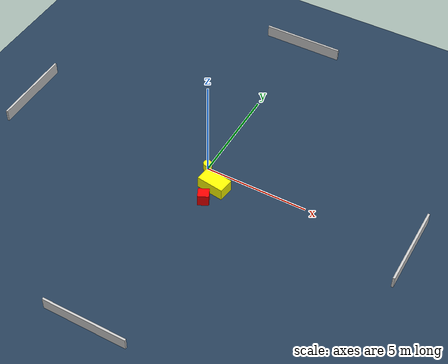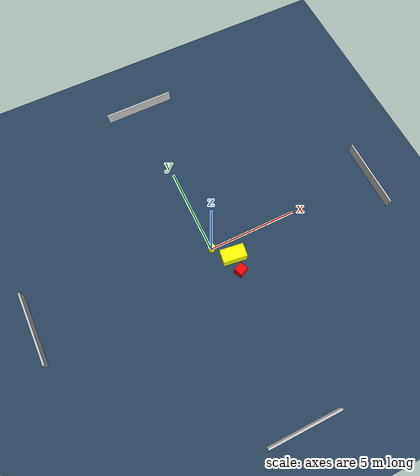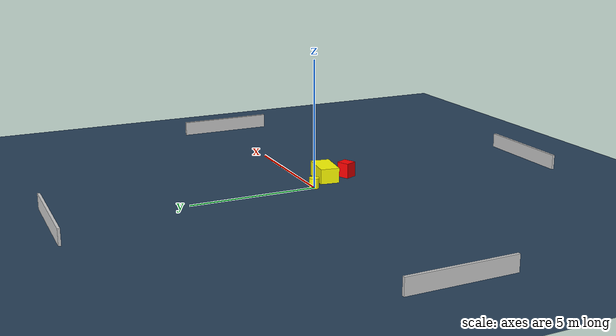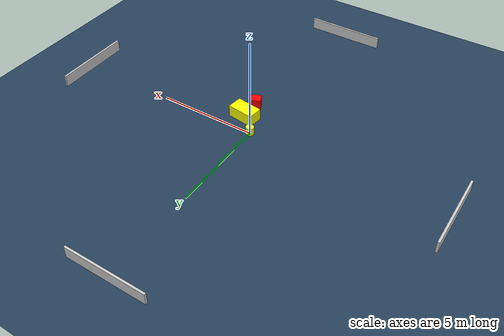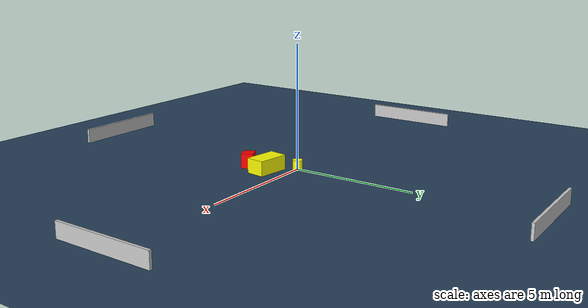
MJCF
<?xml version="1.0" ?>
<mujoco model="generated_environment">
  <option timestep="0.01" integrator="RK4" cone="elliptic"/>
  <default>
    <geom density="1"/>
  </default>
  <asset>
    <texture builtin="gradient" height="3072" name="skybox" rgb1="0.3 0.5 0.7" rgb2="0 0 0" type="skybox" width="512"/>
    <texture builtin="checker" height="300" name="groundplane" rgb1="0.2 0.3 0.4" rgb2="0.1 0.2 0.3" type="2d" width="300"/>
    <material name="groundplane" reflectance="0.2" texrepeat="5 5" texture="groundplane"/>
  </asset>
  <worldbody>
    <light dir="0 0 -1" directional="true" pos="0 0 1.5"/>
    <geom condim="3" friction="0.5 0.005 0.001" material="groundplane" name="floor" pos="0 0 0" size="0 0 0.05" type="plane"/>
    <body name="walls">
      <geom name="wall_1" condim="4" pos="-10.0 0.0 0.3" rgba="0.800000011920929 0.800000011920929 0.800000011920929 1.0" size="0.05 2.0 0.3" type="box"/>
      <geom name="wall_2" condim="4" pos="10.0 0.0 0.3" rgba="0.800000011920929 0.800000011920929 0.800000011920929 1.0" size="0.05 2.0 0.3" type="box"/>
      <geom name="wall_3" condim="4" pos="0.0 -10.0 0.3" rgba="0.800000011920929 0.800000011920929 0.800000011920929 1.0" size="2.0 0.05 0.3" type="box"/>
      <geom name="wall_4" condim="4" pos="0.0 10.0 0.3" rgba="0.800000011920929 0.800000011920929 0.800000011920929 1.0" size="2.0 0.05 0.3" type="box"/>
    </body>
    <body name="robot">
      <joint name="joint_x" type="slide" pos="0 0 0" axis="1 0 0"/>
      <joint name="joint_y" type="slide" pos="0 0 0" axis="0 1 0"/>
      <geom name="robot" type="cylinder" pos="0.0 0.0 0.2" size="0.2 0.2 0.0" mass="5.0" friction="1.0 0.005 0.0001" condim="4" rgba="1.0 1.0 0.0 1.0"/>
    </body>
    <body name="obstacle_1_movable">
      <geom name="obstacle_1_movable" condim="4" pos="0.8599003053423402 -0.8795277555729859 0.3" euler="0 0 262.34439090838555" friction="0.0 0.005 0.001" rgba="1.0 1.0 0.0 1.0" size="0.38094562514139757 0.6637550657963686 0.3" type="box" mass="0.1"/>
      <joint type="free"/>
    </body>
    <body name="obstacle_2_static">
      <geom name="obstacle_2_static" condim="4" pos="0.8217215035787379 -1.8202882578335513 0.3" euler="0 0 115.05038786848101" friction="0.0 0.005 0.001" rgba="1.0 0.0 0.0 1.0" size="0.24338393929048918 0.2609097205778039 0.3" type="box"/>
    </body>
  </worldbody>
  <actuator>
    <motor name="actuator_x" joint="joint_x" gear="1" ctrlrange="-1 1"/>
    <motor name="actuator_y" joint="joint_y" gear="1" ctrlrange="-1 1"/>
  </actuator>
</mujoco>
